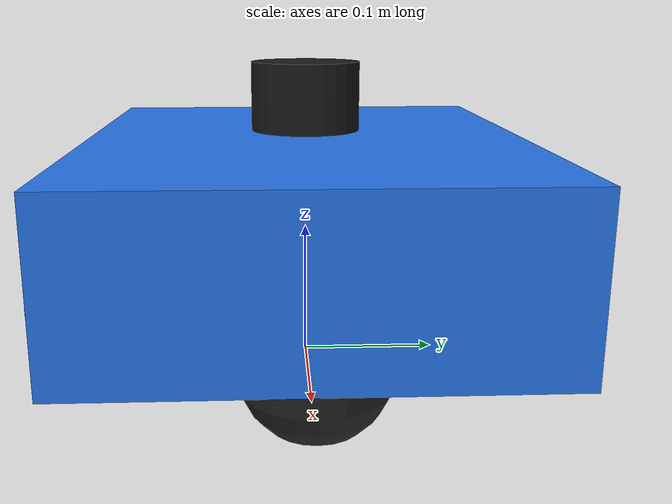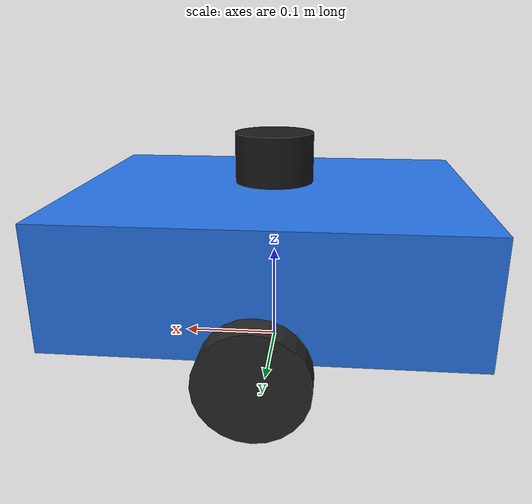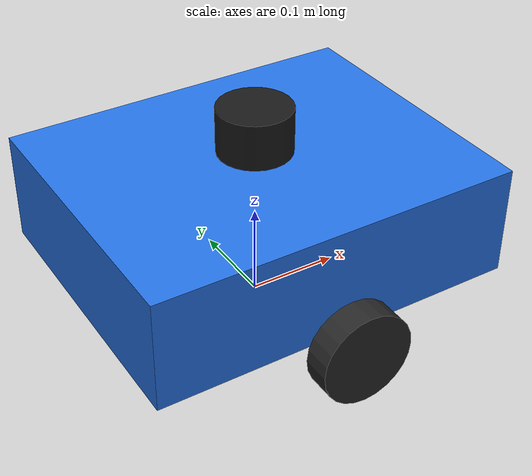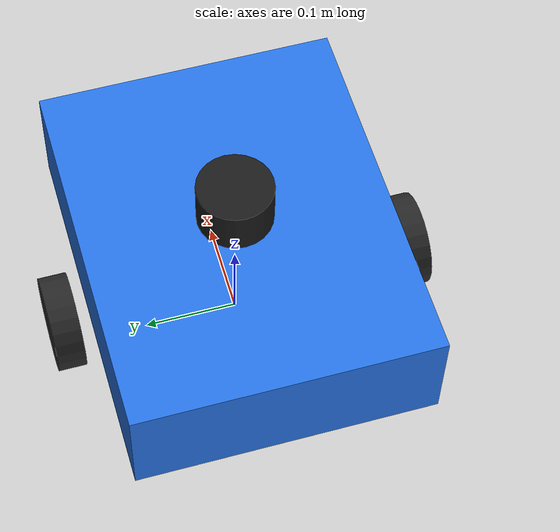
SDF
<?xml version="1.0" ?>
<sdf version="1.9">
  <model name="amr_robot">

    <link name="base_link">
      <pose>0 0 0.11 0 0 0</pose>
      <inertial>
        <mass>6.0</mass>
        <inertia>
          <ixx>0.0584</ixx>
          <iyy>0.0872</iyy>
          <izz>0.1312</izz>
          <ixy>0</ixy>
          <ixz>0</ixz>
          <iyz>0</iyz>
        </inertia>
      </inertial>
      <collision name="collision">
        <geometry><box><size>0.4 0.32 0.12</size></box></geometry>
      </collision>
      <sensor name="chassis_contact" type="contact">
        <always_on>true</always_on>
        <update_rate>30</update_rate>
        <contact><collision>collision</collision></contact>
      </sensor>
      <visual name="visual">
        <geometry><box><size>0.4 0.32 0.12</size></box></geometry>
        <material>
          <ambient>0.1 0.4 0.85 1</ambient>
          <diffuse>0.15 0.45 0.9 1</diffuse>
        </material>
      </visual>
      <sensor name="imu" type="imu">
        <pose>0 0 0.02 0 0 0</pose>
        <gz_frame_id>imu_link</gz_frame_id>
        <always_on>true</always_on>
        <update_rate>50</update_rate>
        <imu>
          <angular_velocity>
            <x><noise type="gaussian"><mean>0</mean><stddev>0.0002</stddev></noise></x>
            <y><noise type="gaussian"><mean>0</mean><stddev>0.0002</stddev></noise></y>
            <z><noise type="gaussian"><mean>0</mean><stddev>0.0002</stddev></noise></z>
          </angular_velocity>
          <linear_acceleration>
            <x><noise type="gaussian"><mean>0</mean><stddev>0.02</stddev></noise></x>
            <y><noise type="gaussian"><mean>0</mean><stddev>0.02</stddev></noise></y>
            <z><noise type="gaussian"><mean>0</mean><stddev>0.02</stddev></noise></z>
          </linear_acceleration>
        </imu>
      </sensor>
    </link>

    <link name="wheel_left">
      <pose>0 0.19 0.05 1.5708 0 0</pose>
      <inertial>
        <mass>0.3</mass>
        <inertia>
          <ixx>0.00021</ixx>
          <iyy>0.00021</iyy>
          <izz>0.000375</izz>
          <ixy>0</ixy>
          <ixz>0</ixz>
          <iyz>0</iyz>
        </inertia>
      </inertial>
      <collision name="collision">
        <geometry><cylinder><radius>0.05</radius><length>0.03</length></cylinder></geometry>
        <surface>
          <friction><ode><mu>1.0</mu><mu2>1.0</mu2></ode></friction>
        </surface>
      </collision>
      <sensor name="wheel_contact" type="contact">
        <always_on>true</always_on>
        <update_rate>30</update_rate>
        <contact><collision>collision</collision></contact>
      </sensor>
      <visual name="visual">
        <geometry><cylinder><radius>0.05</radius><length>0.03</length></cylinder></geometry>
        <material>
          <ambient>0.1 0.1 0.1 1</ambient>
          <diffuse>0.15 0.15 0.15 1</diffuse>
        </material>
      </visual>
    </link>

    <link name="wheel_right">
      <pose>0 -0.19 0.05 1.5708 0 0</pose>
      <inertial>
        <mass>0.3</mass>
        <inertia>
          <ixx>0.00021</ixx>
          <iyy>0.00021</iyy>
          <izz>0.000375</izz>
          <ixy>0</ixy>
          <ixz>0</ixz>
          <iyz>0</iyz>
        </inertia>
      </inertial>
      <collision name="collision">
        <geometry><cylinder><radius>0.05</radius><length>0.03</length></cylinder></geometry>
        <surface>
          <friction><ode><mu>1.0</mu><mu2>1.0</mu2></ode></friction>
        </surface>
      </collision>
      <sensor name="wheel_contact" type="contact">
        <always_on>true</always_on>
        <update_rate>30</update_rate>
        <contact><collision>collision</collision></contact>
      </sensor>
      <visual name="visual">
        <geometry><cylinder><radius>0.05</radius><length>0.03</length></cylinder></geometry>
        <material>
          <ambient>0.1 0.1 0.1 1</ambient>
          <diffuse>0.15 0.15 0.15 1</diffuse>
        </material>
      </visual>
    </link>

    <!-- Passive caster (front). Fixed joint + low friction so it skids
         instead of resisting turns - a standard simplification for a
         lightweight two-wheel-drive model. -->
    <link name="caster">
      <pose>0.15 0 0.05 0 0 0</pose>
      <inertial>
        <mass>0.05</mass>
        <inertia>
          <ixx>0.00005</ixx>
          <iyy>0.00005</iyy>
          <izz>0.00005</izz>
          <ixy>0</ixy>
          <ixz>0</ixz>
          <iyz>0</iyz>
        </inertia>
      </inertial>
      <collision name="collision">
        <geometry><sphere><radius>0.05</radius></sphere></geometry>
        <surface>
          <friction><ode><mu>0.01</mu><mu2>0.01</mu2></ode></friction>
        </surface>
      </collision>
      <sensor name="caster_contact" type="contact">
        <always_on>true</always_on>
        <update_rate>30</update_rate>
        <contact><collision>collision</collision></contact>
      </sensor>
      <visual name="visual">
        <geometry><sphere><radius>0.05</radius></sphere></geometry>
        <material>
          <ambient>0.1 0.1 0.1 1</ambient>
          <diffuse>0.15 0.15 0.15 1</diffuse>
        </material>
      </visual>
    </link>

    <link name="laser_link">
      <pose>0 0 0.20 0 0 0</pose>
      <inertial>
        <mass>0.1</mass>
        <inertia>
          <ixx>0.00003</ixx>
          <iyy>0.00003</iyy>
          <izz>0.00003</izz>
          <ixy>0</ixy>
          <ixz>0</ixz>
          <iyz>0</iyz>
        </inertia>
      </inertial>
      <visual name="visual">
        <geometry><cylinder><radius>0.04</radius><length>0.05</length></cylinder></geometry>
        <material>
          <ambient>0.05 0.05 0.05 1</ambient>
          <diffuse>0.1 0.1 0.1 1</diffuse>
        </material>
      </visual>
      <sensor name="lidar" type="gpu_lidar">
        <gz_frame_id>laser_link</gz_frame_id>
        <always_on>true</always_on>
        <update_rate>10</update_rate>
        <visualize>false</visualize>
        <lidar>
          <scan>
            <horizontal>
              <samples>360</samples>
              <resolution>1</resolution>
              <min_angle>-3.14159</min_angle>
              <max_angle>3.14159</max_angle>
            </horizontal>
          </scan>
          <range>
            <min>0.12</min>
            <max>8.0</max>
            <resolution>0.01</resolution>
          </range>
        </lidar>
      </sensor>
    </link>

    <joint name="left_wheel_joint" type="revolute">
      <parent>base_link</parent>
      <child>wheel_left</child>
      <axis>
        <xyz>0 1 0</xyz>
        <limit><lower>-1e16</lower><upper>1e16</upper></limit>
      </axis>
    </joint>

    <joint name="right_wheel_joint" type="revolute">
      <parent>base_link</parent>
      <child>wheel_right</child>
      <axis>
        <xyz>0 1 0</xyz>
        <limit><lower>-1e16</lower><upper>1e16</upper></limit>
      </axis>
    </joint>

    <joint name="caster_joint" type="fixed">
      <parent>base_link</parent>
      <child>caster</child>
    </joint>

    <joint name="laser_joint" type="fixed">
      <parent>base_link</parent>
      <child>laser_link</child>
    </joint>

    <plugin filename="gz-sim-diff-drive-system" name="gz::sim::systems::DiffDrive">
      <left_joint>left_wheel_joint</left_joint>
      <right_joint>right_wheel_joint</right_joint>
      <wheel_separation>0.38</wheel_separation>
      <wheel_radius>0.05</wheel_radius>
      <odom_publish_frequency>30</odom_publish_frequency>
      <frame_id>odom</frame_id>
      <child_frame_id>base_footprint</child_frame_id>
      <max_linear_acceleration>2.0</max_linear_acceleration>
      <min_linear_acceleration>-2.0</min_linear_acceleration>
      <max_angular_acceleration>4.0</max_angular_acceleration>
      <min_angular_acceleration>-4.0</min_angular_acceleration>
    </plugin>

  </model>
</sdf>
